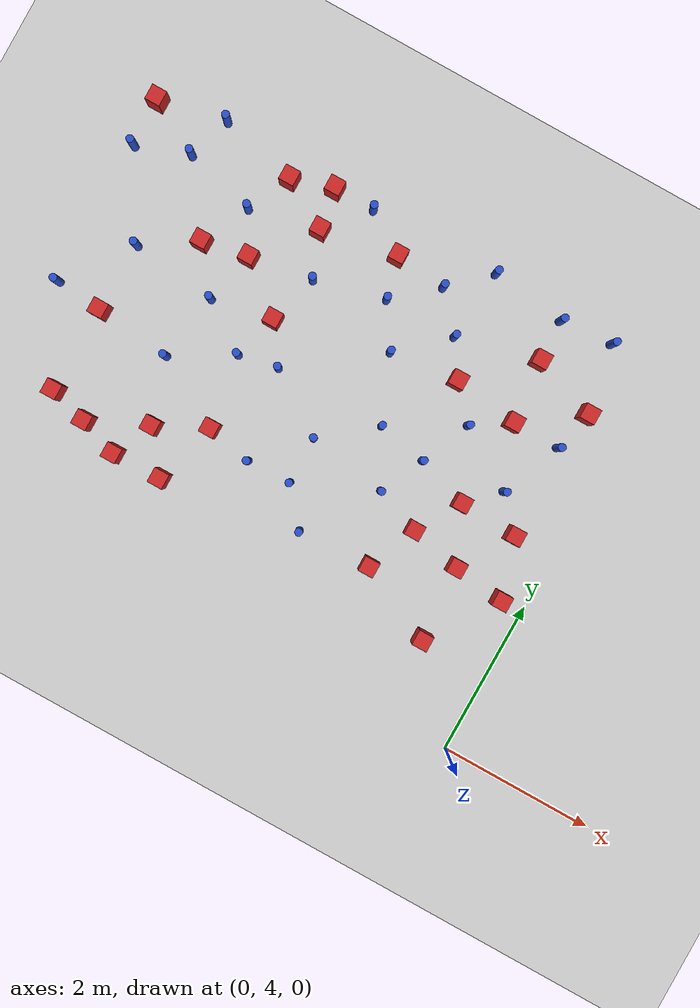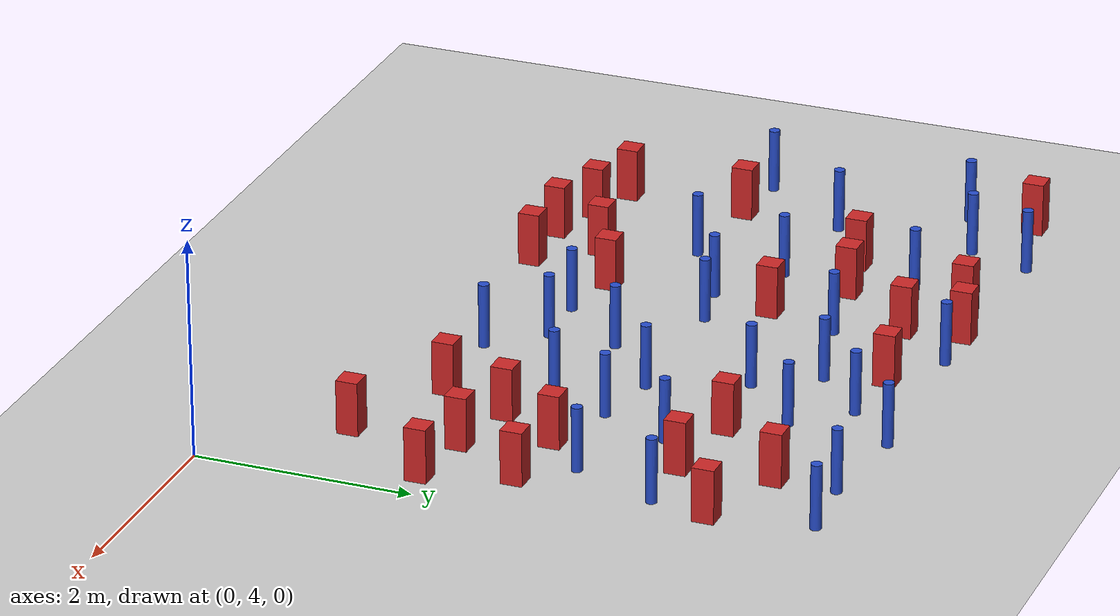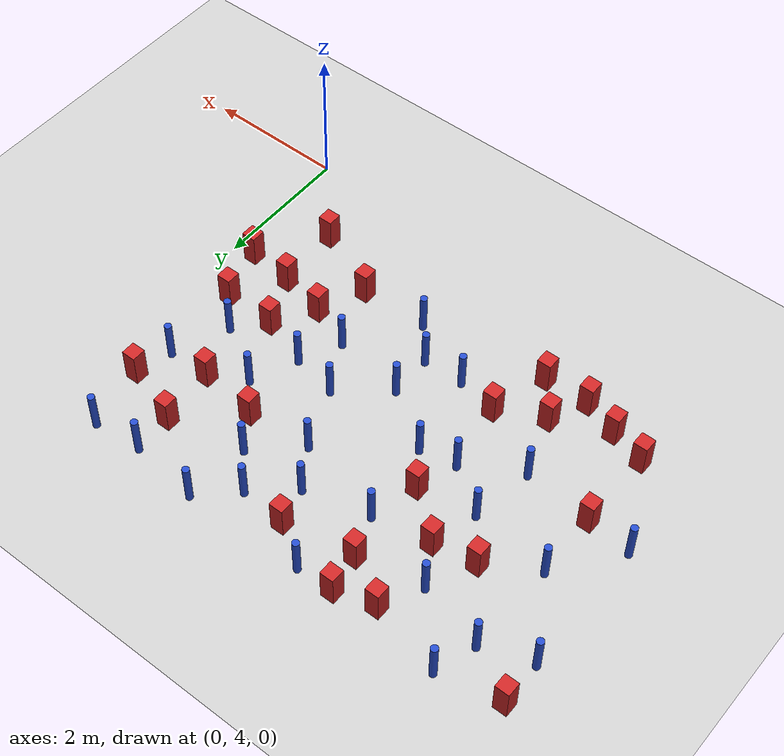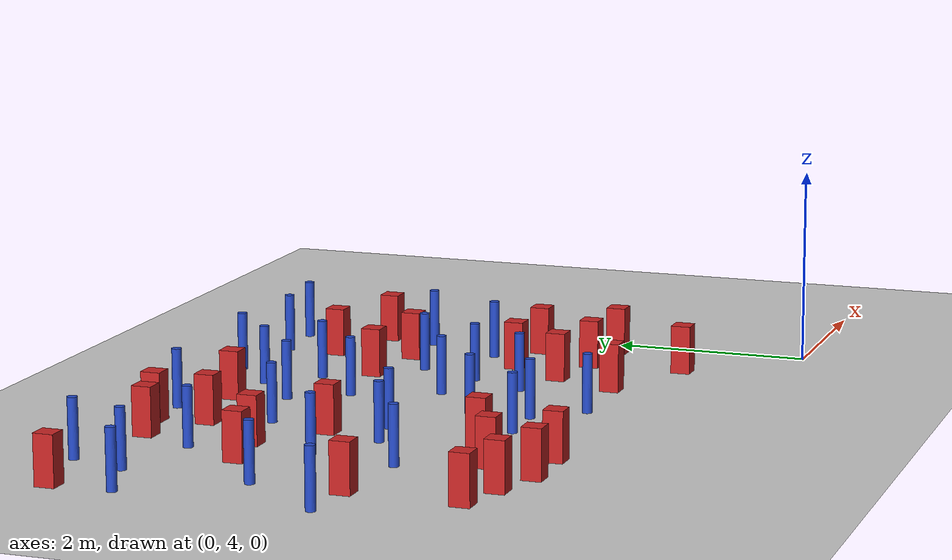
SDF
<sdf version="1.6">
 <world name="default">
  <model name="ground_plane">
   <static>1</static>
   <link name="link">
    <collision name="collision">
     <geometry><plane><normal>0 0 1</normal><size>100 100</size></plane></geometry>
     <surface><friction><ode><mu>100</mu><mu2>50</mu2></ode></friction></surface>
    </collision>
    <visual name="visual">
     <cast_shadows>0</cast_shadows>
     <geometry><plane><normal>0 0 1</normal><size>100 100</size></plane></geometry>
     <material>
      <ambient>1.0 1.0 1.0 1.0</ambient>
      <diffuse>0.8 0.8 0.8 1.0</diffuse>
      <specular>0.01 0.01 0.01 1.000000</specular>
     </material>
    </visual>
   </link>
  </model>
  <model name="pole_obstacle4">
   <static>true</static>
   <pose>-0.930717759357 7.12484259707 7.38925637345e-09 -8.471706928e-08 1.24976765086e-08 -1.74513093015e-07</pose>
   <link name="link">
    <pose>0 0 0.3 0 -0 0</pose>
    <inertial>
     <mass>1</mass>
     <inertia><ixx>0.145833</ixx><ixy>0</ixy><ixz>0</ixz><iyy>0.145833</iyy><iyz>0</iyz><izz>0.125</izz></inertia>
    </inertial>
    <collision name="collision">
     <geometry><cylinder><radius>0.05</radius><length>.6</length></cylinder></geometry>
    </collision>
    <visual name="visual">
     <geometry><cylinder><radius>0.05</radius><length>.6</length></cylinder></geometry>
     <material>
      <script><name>Gazebo/Blue</name><uri>file://media/materials/scripts/gazebo.material</uri></script>
     </material>
    </visual>
   </link>
  </model>
  <model name="square_post_obstacle12">
   <static>true</static>
   <pose>-4.55918763524 9.36100081865 1.91545236811e-07 -7.35059704564e-06 1.12565212e-07 2.39332434364e-05</pose>
   <link name="link">
    <pose>0 0 0.25 0 -0 0</pose>
    <inertial>
     <mass>100</mass>
     <inertia>
      <ixx>0.166667</ixx>
      <ixy>0</ixy>
      <ixz>0</ixz>
      <iyy>0.166667</iyy>
      <iyz>0</iyz>
      <izz>0.166667</izz>
     </inertia>
    </inertial>
    <collision name="collision"><geometry><box><size>.2 .2 .5</size></box></geometry></collision>
    <visual name="visual">
     <geometry><box><size>.2 .2 .5</size></box></geometry>
     <material>
      <script><name>Gazebo/Red</name><uri>file://media/materials/scripts/gazebo.material</uri></script>
     </material>
    </visual>
   </link>
  </model>
  <model name="pole_obstacle28">
   <static>true</static>
   <pose>-1.71406051305 7.61934834004 7.38925637345e-09 -8.47170692799e-08 1.24976765033e-08 -1.74513093018e-07</pose>
   <link name="link">
    <pose>0 0 0.3 0 -0 0</pose>
    <inertial>
     <mass>1</mass>
     <inertia><ixx>0.145833</ixx><ixy>0</ixy><ixz>0</ixz><iyy>0.145833</iyy><iyz>0</iyz><izz>0.125</izz></inertia>
    </inertial>
    <collision name="collision">
     <geometry><cylinder><radius>0.05</radius><length>.6</length></cylinder></geometry>
    </collision>
    <visual name="visual">
     <geometry><cylinder><radius>0.05</radius><length>.6</length></cylinder></geometry>
     <material>
      <script><name>Gazebo/Blue</name><uri>file://media/materials/scripts/gazebo.material</uri></script>
     </material>
    </visual>
   </link>
  </model>
  <model name="pole_obstacle32">
   <static>true</static>
   <pose>-6.35082785405 7.57170892013 7.38925637345e-09 -8.47170692796e-08 1.24976764786e-08 -1.74513093032e-07</pose>
   <link name="link">
    <pose>0 0 0.3 0 -0 0</pose>
    <inertial>
     <mass>1</mass>
     <inertia><ixx>0.145833</ixx><ixy>0</ixy><ixz>0</ixz><iyy>0.145833</iyy><iyz>0</iyz><izz>0.125</izz></inertia>
    </inertial>
    <collision name="collision">
     <geometry><cylinder><radius>0.05</radius><length>.6</length></cylinder></geometry>
    </collision>
    <visual name="visual">
     <geometry><cylinder><radius>0.05</radius><length>.6</length></cylinder></geometry>
     <material>
      <script><name>Gazebo/Blue</name><uri>file://media/materials/scripts/gazebo.material</uri></script>
     </material>
    </visual>
   </link>
  </model>
  <model name="pole_obstacle34">
   <static>true</static>
   <pose>-5.37613314952 8.6303343026 7.38925637345e-09 -8.471706928e-08 1.24976765081e-08 -1.74513093015e-07</pose>
   <link name="link">
    <pose>0 0 0.3 0 -0 0</pose>
    <inertial>
     <mass>1</mass>
     <inertia><ixx>0.145833</ixx><ixy>0</ixy><ixz>0</ixz><iyy>0.145833</iyy><iyz>0</iyz><izz>0.125</izz></inertia>
    </inertial>
    <collision name="collision">
     <geometry><cylinder><radius>0.05</radius><length>.6</length></cylinder></geometry>
    </collision>
    <visual name="visual">
     <geometry><cylinder><radius>0.05</radius><length>.6</length></cylinder></geometry>
     <material>
      <script><name>Gazebo/Blue</name><uri>file://media/materials/scripts/gazebo.material</uri></script>
     </material>
    </visual>
   </link>
  </model>
  <model name="pole_obstacle36">
   <static>true</static>
   <pose>-6.97989239073 6.7150000627 7.38925637345e-09 -8.47170692796e-08 1.24976764786e-08 -1.74513093032e-07</pose>
   <link name="link">
    <pose>0 0 0.3 0 -0 0</pose>
    <inertial>
     <mass>1</mass>
     <inertia><ixx>0.145833</ixx><ixy>0</ixy><ixz>0</ixz><iyy>0.145833</iyy><iyz>0</iyz><izz>0.125</izz></inertia>
    </inertial>
    <collision name="collision">
     <geometry><cylinder><radius>0.05</radius><length>.6</length></cylinder></geometry>
    </collision>
    <visual name="visual">
     <geometry><cylinder><radius>0.05</radius><length>.6</length></cylinder></geometry>
     <material>
      <script><name>Gazebo/Blue</name><uri>file://media/materials/scripts/gazebo.material</uri></script>
     </material>
    </visual>
   </link>
  </model>
  <model name="pole_obstacle40">
   <static>true</static>
   <pose>-1.99238676467 6.96823356123 7.38925637345e-09 -8.47170692799e-08 1.2497676507e-08 -1.74513093016e-07</pose>
   <link name="link">
    <pose>0 0 0.3 0 -0 0</pose>
    <inertial>
     <mass>1</mass>
     <inertia><ixx>0.145833</ixx><ixy>0</ixy><ixz>0</ixz><iyy>0.145833</iyy><iyz>0</iyz><izz>0.125</izz></inertia>
    </inertial>
    <collision name="collision">
     <geometry><cylinder><radius>0.05</radius><length>.6</length></cylinder></geometry>
    </collision>
    <visual name="visual">
     <geometry><cylinder><radius>0.05</radius><length>.6</length></cylinder></geometry>
     <material>
      <script><name>Gazebo/Blue</name><uri>file://media/materials/scripts/gazebo.material</uri></script>
     </material>
    </visual>
   </link>
  </model>
  <model name="pole_obstacle42">
   <static>true</static>
   <pose>-1.34647374976 9.29930138233 7.38925637345e-09 -8.47170692798e-08 1.24976764881e-08 -1.74513093027e-07</pose>
   <link name="link">
    <pose>0 0 0.3 0 -0 0</pose>
    <inertial>
     <mass>1</mass>
     <inertia><ixx>0.145833</ixx><ixy>0</ixy><ixz>0</ixz><iyy>0.145833</iyy><iyz>0</iyz><izz>0.125</izz></inertia>
    </inertial>
    <collision name="collision">
     <geometry><cylinder><radius>0.05</radius><length>.6</length></cylinder></geometry>
    </collision>
    <visual name="visual">
     <geometry><cylinder><radius>0.05</radius><length>.6</length></cylinder></geometry>
     <material>
      <script><name>Gazebo/Blue</name><uri>file://media/materials/scripts/gazebo.material</uri></script>
     </material>
    </visual>
   </link>
  </model>
  <model name="pole_obstacle43">
   <static>true</static>
   <pose>-4.60972845039 7.00054521058 7.38925637345e-09 -8.47170692796e-08 1.24976764786e-08 -1.74513093032e-07</pose>
   <link name="link">
    <pose>0 0 0.3 0 -0 0</pose>
    <inertial>
     <mass>1</mass>
     <inertia><ixx>0.145833</ixx><ixy>0</ixy><ixz>0</ixz><iyy>0.145833</iyy><iyz>0</iyz><izz>0.125</izz></inertia>
    </inertial>
    <collision name="collision">
     <geometry><cylinder><radius>0.05</radius><length>.6</length></cylinder></geometry>
    </collision>
    <visual name="visual">
     <geometry><cylinder><radius>0.05</radius><length>.6</length></cylinder></geometry>
     <material>
      <script><name>Gazebo/Blue</name><uri>file://media/materials/scripts/gazebo.material</uri></script>
     </material>
    </visual>
   </link>
  </model>
  <model name="pole_obstacle45">
   <static>true</static>
   <pose>-0.658210196071 9.35668342999 7.38925637345e-09 -8.47170692797e-08 1.249767648e-08 -1.74513093032e-07</pose>
   <link name="link">
    <pose>0 0 0.3 0 -0 0</pose>
    <inertial>
     <mass>1</mass>
     <inertia><ixx>0.145833</ixx><ixy>0</ixy><ixz>0</ixz><iyy>0.145833</iyy><iyz>0</iyz><izz>0.125</izz></inertia>
    </inertial>
    <collision name="collision">
     <geometry><cylinder><radius>0.05</radius><length>.6</length></cylinder></geometry>
    </collision>
    <visual name="visual">
     <geometry><cylinder><radius>0.05</radius><length>.6</length></cylinder></geometry>
     <material>
      <script><name>Gazebo/Blue</name><uri>file://media/materials/scripts/gazebo.material</uri></script>
     </material>
    </visual>
   </link>
  </model>
  <model name="square_post_obstacle37">
   <static>true</static>
   <pose>-6.36200642995 5.52686472574 1.91545236811e-07 -7.35059704564e-06 1.12565212e-07 2.39332434364e-05</pose>
   <link name="link">
    <pose>0 0 0.25 0 -0 0</pose>
    <inertial>
     <mass>100</mass>
     <inertia>
      <ixx>0.166667</ixx>
      <ixy>0</ixy>
      <ixz>0</ixz>
      <iyy>0.166667</iyy>
      <iyz>0</iyz>
      <izz>0.166667</izz>
     </inertia>
    </inertial>
    <collision name="collision"><geometry><box><size>.2 .2 .5</size></box></geometry></collision>
    <visual name="visual">
     <geometry><box><size>.2 .2 .5</size></box></geometry>
     <material>
      <script><name>Gazebo/Red</name><uri>file://media/materials/scripts/gazebo.material</uri></script>
     </material>
    </visual>
   </link>
  </model>
  <model name="square_post_obstacle38">
   <static>true</static>
   <pose>-4.45908990108 6.04963042775 1.91545236811e-07 -7.35059704564e-06 1.12565212e-07 2.39332434364e-05</pose>
   <link name="link">
    <pose>0 0 0.25 0 -0 0</pose>
    <inertial>
     <mass>100</mass>
     <inertia>
      <ixx>0.166667</ixx>
      <ixy>0</ixy>
      <ixz>0</ixz>
      <iyy>0.166667</iyy>
      <iyz>0</iyz>
      <izz>0.166667</izz>
     </inertia>
    </inertial>
    <collision name="collision"><geometry><box><size>.2 .2 .5</size></box></geometry></collision>
    <visual name="visual">
     <geometry><box><size>.2 .2 .5</size></box></geometry>
     <material>
      <script><name>Gazebo/Red</name><uri>file://media/materials/scripts/gazebo.material</uri></script>
     </material>
    </visual>
   </link>
  </model>
  <model name="pole_obstacle51">
   <static>true</static>
   <pose>-3.29571415643 6.55785042648 7.38925637345e-09 -8.47170692798e-08 1.24976765033e-08 -1.74513093019e-07</pose>
   <link name="link">
    <pose>0 0 0.3 0 -0 0</pose>
    <inertial>
     <mass>1</mass>
     <inertia><ixx>0.145833</ixx><ixy>0</ixy><ixz>0</ixz><iyy>0.145833</iyy><iyz>0</iyz><izz>0.125</izz></inertia>
    </inertial>
    <collision name="collision">
     <geometry><cylinder><radius>0.05</radius><length>.6</length></cylinder></geometry>
    </collision>
    <visual name="visual">
     <geometry><cylinder><radius>0.05</radius><length>.6</length></cylinder></geometry>
     <material>
      <script><name>Gazebo/Blue</name><uri>file://media/materials/scripts/gazebo.material</uri></script>
     </material>
    </visual>
   </link>
  </model>
  <model name="square_post_obstacle44">
   <static>true</static>
   <pose>-1.93911161872 5.51848959936 1.91545236811e-07 -7.35059704564e-06 1.12565212e-07 2.39332434364e-05</pose>
   <link name="link">
    <pose>0 0 0.25 0 -0 0</pose>
    <inertial>
     <mass>100</mass>
     <inertia>
      <ixx>0.166667</ixx>
      <ixy>0</ixy>
      <ixz>0</ixz>
      <iyy>0.166667</iyy>
      <iyz>0</iyz>
      <izz>0.166667</izz>
     </inertia>
    </inertial>
    <collision name="collision"><geometry><box><size>.2 .2 .5</size></box></geometry></collision>
    <visual name="visual">
     <geometry><box><size>.2 .2 .5</size></box></geometry>
     <material>
      <script><name>Gazebo/Red</name><uri>file://media/materials/scripts/gazebo.material</uri></script>
     </material>
    </visual>
   </link>
  </model>
  <model name="square_post_obstacle45">
   <static>true</static>
   <pose>-1.32112253004 6.74896121471 1.91545236811e-07 -7.35059704564e-06 1.12565212e-07 2.39332434364e-05</pose>
   <link name="link">
    <pose>0 0 0.25 0 -0 0</pose>
    <inertial>
     <mass>100</mass>
     <inertia>
      <ixx>0.166667</ixx>
      <ixy>0</ixy>
      <ixz>0</ixz>
      <iyy>0.166667</iyy>
      <iyz>0</iyz>
      <izz>0.166667</izz>
     </inertia>
    </inertial>
    <collision name="collision"><geometry><box><size>.2 .2 .5</size></box></geometry></collision>
    <visual name="visual">
     <geometry><box><size>.2 .2 .5</size></box></geometry>
     <material>
      <script><name>Gazebo/Red</name><uri>file://media/materials/scripts/gazebo.material</uri></script>
     </material>
    </visual>
   </link>
  </model>
  <model name="pole_obstacle61">
   <static>true</static>
   <pose>-2.8109379663 8.95694958521 7.38925637345e-09 -8.47170692793e-08 1.24976764408e-08 -1.74513093041e-07</pose>
   <link name="link">
    <pose>0 0 0.3 0 -0 0</pose>
    <inertial>
     <mass>1</mass>
     <inertia><ixx>0.145833</ixx><ixy>0</ixy><ixz>0</ixz><iyy>0.145833</iyy><iyz>0</iyz><izz>0.125</izz></inertia>
    </inertial>
    <collision name="collision">
     <geometry><cylinder><radius>0.05</radius><length>.6</length></cylinder></geometry>
    </collision>
    <visual name="visual">
     <geometry><cylinder><radius>0.05</radius><length>.6</length></cylinder></geometry>
     <material>
      <script><name>Gazebo/Blue</name><uri>file://media/materials/scripts/gazebo.material</uri></script>
     </material>
    </visual>
   </link>
  </model>
  <model name="pole_obstacle62">
   <static>true</static>
   <pose>-3.28658914548 5.93734690751 7.38925637345e-09 -8.47170692794e-08 1.24976764468e-08 -1.7451309304e-07</pose>
   <link name="link">
    <pose>0 0 0.3 0 -0 0</pose>
    <inertial>
     <mass>1</mass>
     <inertia><ixx>0.145833</ixx><ixy>0</ixy><ixz>0</ixz><iyy>0.145833</iyy><iyz>0</iyz><izz>0.125</izz></inertia>
    </inertial>
    <collision name="collision">
     <geometry><cylinder><radius>0.05</radius><length>.6</length></cylinder></geometry>
    </collision>
    <visual name="visual">
     <geometry><cylinder><radius>0.05</radius><length>.6</length></cylinder></geometry>
     <material>
      <script><name>Gazebo/Blue</name><uri>file://media/materials/scripts/gazebo.material</uri></script>
     </material>
    </visual>
   </link>
  </model>
  <model name="pole_obstacle66">
   <static>true</static>
   <pose>-5.37779951973 6.55581427016 7.38925637345e-09 -8.47170692796e-08 1.24976764786e-08 -1.74513093032e-07</pose>
   <link name="link">
    <pose>0 0 0.3 0 -0 0</pose>
    <inertial>
     <mass>1</mass>
     <inertia><ixx>0.145833</ixx><ixy>0</ixy><ixz>0</ixz><iyy>0.145833</iyy><iyz>0</iyz><izz>0.125</izz></inertia>
    </inertial>
    <collision name="collision">
     <geometry><cylinder><radius>0.05</radius><length>.6</length></cylinder></geometry>
    </collision>
    <visual name="visual">
     <geometry><cylinder><radius>0.05</radius><length>.6</length></cylinder></geometry>
     <material>
      <script><name>Gazebo/Blue</name><uri>file://media/materials/scripts/gazebo.material</uri></script>
     </material>
    </visual>
   </link>
  </model>
  <model name="square_post_obstacle53">
   <static>true</static>
   <pose>-1.66848269606 6.17764640314 1.91545236811e-07 -7.35059704564e-06 1.12565212e-07 2.39332434364e-05</pose>
   <link name="link">
    <pose>0 0 0.25 0 -0 0</pose>
    <inertial>
     <mass>100</mass>
     <inertia>
      <ixx>0.166667</ixx>
      <ixy>0</ixy>
      <ixz>0</ixz>
      <iyy>0.166667</iyy>
      <iyz>0</iyz>
      <izz>0.166667</izz>
     </inertia>
    </inertial>
    <collision name="collision"><geometry><box><size>.2 .2 .5</size></box></geometry></collision>
    <visual name="visual">
     <geometry><box><size>.2 .2 .5</size></box></geometry>
     <material>
      <script><name>Gazebo/Red</name><uri>file://media/materials/scripts/gazebo.material</uri></script>
     </material>
    </visual>
   </link>
  </model>
  <model name="pole_obstacle73">
   <static>true</static>
   <pose>-3.86832075959 5.92066692139 7.38925637345e-09 -8.47170692798e-08 1.24976765033e-08 -1.74513093019e-07</pose>
   <link name="link">
    <pose>0 0 0.3 0 -0 0</pose>
    <inertial>
     <mass>1</mass>
     <inertia><ixx>0.145833</ixx><ixy>0</ixy><ixz>0</ixz><iyy>0.145833</iyy><iyz>0</iyz><izz>0.125</izz></inertia>
    </inertial>
    <collision name="collision">
     <geometry><cylinder><radius>0.05</radius><length>.6</length></cylinder></geometry>
    </collision>
    <visual name="visual">
     <geometry><cylinder><radius>0.05</radius><length>.6</length></cylinder></geometry>
     <material>
      <script><name>Gazebo/Blue</name><uri>file://media/materials/scripts/gazebo.material</uri></script>
     </material>
    </visual>
   </link>
  </model>
  <model name="pole_obstacle86">
   <static>true</static>
   <pose>-2.63784023454 7.09611200315 7.38925637345e-09 -8.47170692798e-08 1.24976765033e-08 -1.74513093019e-07</pose>
   <link name="link">
    <pose>0 0 0.3 0 -0 0</pose>
    <inertial>
     <mass>1</mass>
     <inertia><ixx>0.145833</ixx><ixy>0</ixy><ixz>0</ixz><iyy>0.145833</iyy><iyz>0</iyz><izz>0.125</izz></inertia>
    </inertial>
    <collision name="collision">
     <geometry><cylinder><radius>0.05</radius><length>.6</length></cylinder></geometry>
    </collision>
    <visual name="visual">
     <geometry><cylinder><radius>0.05</radius><length>.6</length></cylinder></geometry>
     <material>
      <script><name>Gazebo/Blue</name><uri>file://media/materials/scripts/gazebo.material</uri></script>
     </material>
    </visual>
   </link>
  </model>
  <model name="square_post_obstacle74">
   <static>true</static>
   <pose>-6.34874334161 6.65929220049 1.91545236811e-07 -7.35059704564e-06 1.12565212e-07 2.39332434364e-05</pose>
   <link name="link">
    <pose>0 0 0.25 0 -0 0</pose>
    <inertial>
     <mass>100</mass>
     <inertia>
      <ixx>0.166667</ixx>
      <ixy>0</ixy>
      <ixz>0</ixz>
      <iyy>0.166667</iyy>
      <iyz>0</iyz>
      <izz>0.166667</izz>
     </inertia>
    </inertial>
    <collision name="collision"><geometry><box><size>.2 .2 .5</size></box></geometry></collision>
    <visual name="visual">
     <geometry><box><size>.2 .2 .5</size></box></geometry>
     <material>
      <script><name>Gazebo/Red</name><uri>file://media/materials/scripts/gazebo.material</uri></script>
     </material>
    </visual>
   </link>
  </model>
  <model name="square_post_obstacle80">
   <static>true</static>
   <pose>-4.44009663885 7.59226835453 1.91545236811e-07 -7.35059704564e-06 1.12565212e-07 2.39332434364e-05</pose>
   <link name="link">
    <pose>0 0 0.25 0 -0 0</pose>
    <inertial>
     <mass>100</mass>
     <inertia>
      <ixx>0.166667</ixx>
      <ixy>0</ixy>
      <ixz>0</ixz>
      <iyy>0.166667</iyy>
      <iyz>0</iyz>
      <izz>0.166667</izz>
     </inertia>
    </inertial>
    <collision name="collision"><geometry><box><size>.2 .2 .5</size></box></geometry></collision>
    <visual name="visual">
     <geometry><box><size>.2 .2 .5</size></box></geometry>
     <material>
      <script><name>Gazebo/Red</name><uri>file://media/materials/scripts/gazebo.material</uri></script>
     </material>
    </visual>
   </link>
  </model>
  <model name="pole_obstacle93">
   <static>true</static>
   <pose>-2.98899749594 7.94003792049 7.38925637345e-09 -8.47170692798e-08 1.24976765033e-08 -1.74513093019e-07</pose>
   <link name="link">
    <pose>0 0 0.3 0 -0 0</pose>
    <inertial>
     <mass>1</mass>
     <inertia><ixx>0.145833</ixx><ixy>0</ixy><ixz>0</ixz><iyy>0.145833</iyy><iyz>0</iyz><izz>0.125</izz></inertia>
    </inertial>
    <collision name="collision">
     <geometry><cylinder><radius>0.05</radius><length>.6</length></cylinder></geometry>
    </collision>
    <visual name="visual">
     <geometry><cylinder><radius>0.05</radius><length>.6</length></cylinder></geometry>
     <material>
      <script><name>Gazebo/Blue</name><uri>file://media/materials/scripts/gazebo.material</uri></script>
     </material>
    </visual>
   </link>
  </model>
  <model name="square_post_obstacle87">
   <static>true</static>
   <pose>-2.09605803203 8.03868098369 1.91545236811e-07 -7.35059704564e-06 1.12565212e-07 2.39332434364e-05</pose>
   <link name="link">
    <pose>0 0 0.25 0 -0 0</pose>
    <inertial>
     <mass>100</mass>
     <inertia>
      <ixx>0.166667</ixx>
      <ixy>0</ixy>
      <ixz>0</ixz>
      <iyy>0.166667</iyy>
      <iyz>0</iyz>
      <izz>0.166667</izz>
     </inertia>
    </inertial>
    <collision name="collision"><geometry><box><size>.2 .2 .5</size></box></geometry></collision>
    <visual name="visual">
     <geometry><box><size>.2 .2 .5</size></box></geometry>
     <material>
      <script><name>Gazebo/Red</name><uri>file://media/materials/scripts/gazebo.material</uri></script>
     </material>
    </visual>
   </link>
  </model>
  <model name="square_post_obstacle101">
   <static>true</static>
   <pose>-6.98807163195 9.25258063277 1.91545236811e-07 -7.35059704564e-06 1.12565212e-07 2.39332434364e-05</pose>
   <link name="link">
    <pose>0 0 0.25 0 -0 0</pose>
    <inertial>
     <mass>100</mass>
     <inertia>
      <ixx>0.166667</ixx>
      <ixy>0</ixy>
      <ixz>0</ixz>
      <iyy>0.166667</iyy>
      <iyz>0</iyz>
      <izz>0.166667</izz>
     </inertia>
    </inertial>
    <collision name="collision"><geometry><box><size>.2 .2 .5</size></box></geometry></collision>
    <visual name="visual">
     <geometry><box><size>.2 .2 .5</size></box></geometry>
     <material>
      <script><name>Gazebo/Red</name><uri>file://media/materials/scripts/gazebo.material</uri></script>
     </material>
    </visual>
   </link>
  </model>
  <model name="square_post_obstacle106">
   <static>true</static>
   <pose>-4.69953275738 5.212243168 1.91545236811e-07 -7.35059704564e-06 1.12565212e-07 2.39332434364e-05</pose>
   <link name="link">
    <pose>0 0 0.25 0 -0 0</pose>
    <inertial>
     <mass>100</mass>
     <inertia>
      <ixx>0.166667</ixx>
      <ixy>0</ixy>
      <ixz>0</ixz>
      <iyy>0.166667</iyy>
      <iyz>0</iyz>
      <izz>0.166667</izz>
     </inertia>
    </inertial>
    <collision name="collision"><geometry><box><size>.2 .2 .5</size></box></geometry></collision>
    <visual name="visual">
     <geometry><box><size>.2 .2 .5</size></box></geometry>
     <material>
      <script><name>Gazebo/Red</name><uri>file://media/materials/scripts/gazebo.material</uri></script>
     </material>
    </visual>
   </link>
  </model>
  <model name="square_post_obstacle110">
   <static>true</static>
   <pose>-5.0734626485 8.11465592109 1.91545236811e-07 -7.35059704564e-06 1.12565212e-07 2.39332434364e-05</pose>
   <link name="link">
    <pose>0 0 0.25 0 -0 0</pose>
    <inertial>
     <mass>100</mass>
     <inertia>
      <ixx>0.166667</ixx>
      <ixy>0</ixy>
      <ixz>0</ixz>
      <iyy>0.166667</iyy>
      <iyz>0</iyz>
      <izz>0.166667</izz>
     </inertia>
    </inertial>
    <collision name="collision"><geometry><box><size>.2 .2 .5</size></box></geometry></collision>
    <visual name="visual">
     <geometry><box><size>.2 .2 .5</size></box></geometry>
     <material>
      <script><name>Gazebo/Red</name><uri>file://media/materials/scripts/gazebo.material</uri></script>
     </material>
    </visual>
   </link>
  </model>
  <model name="pole_obstacle113">
   <static>true</static>
   <pose>-4.25526104985 8.25393531505 7.38925637345e-09 -8.471706928e-08 1.24976765081e-08 -1.74513093015e-07</pose>
   <link name="link">
    <pose>0 0 0.3 0 -0 0</pose>
    <inertial>
     <mass>1</mass>
     <inertia><ixx>0.145833</ixx><ixy>0</ixy><ixz>0</ixz><iyy>0.145833</iyy><iyz>0</iyz><izz>0.125</izz></inertia>
    </inertial>
    <collision name="collision">
     <geometry><cylinder><radius>0.05</radius><length>.6</length></cylinder></geometry>
    </collision>
    <visual name="visual">
     <geometry><cylinder><radius>0.05</radius><length>.6</length></cylinder></geometry>
     <material>
      <script><name>Gazebo/Blue</name><uri>file://media/materials/scripts/gazebo.material</uri></script>
     </material>
    </visual>
   </link>
  </model>
  <model name="pole_obstacle115">
   <static>true</static>
   <pose>-2.25819075225 6.39402592839 7.38925637345e-09 -8.47170692798e-08 1.24976765033e-08 -1.74513093019e-07</pose>
   <link name="link">
    <pose>0 0 0.3 0 -0 0</pose>
    <inertial>
     <mass>1</mass>
     <inertia><ixx>0.145833</ixx><ixy>0</ixy><ixz>0</ixz><iyy>0.145833</iyy><iyz>0</iyz><izz>0.125</izz></inertia>
    </inertial>
    <collision name="collision">
     <geometry><cylinder><radius>0.05</radius><length>.6</length></cylinder></geometry>
    </collision>
    <visual name="visual">
     <geometry><cylinder><radius>0.05</radius><length>.6</length></cylinder></geometry>
     <material>
      <script><name>Gazebo/Blue</name><uri>file://media/materials/scripts/gazebo.material</uri></script>
     </material>
    </visual>
   </link>
  </model>
  <model name="pole_obstacle123">
   <static>true</static>
   <pose>-3.34349314362 8.4860822654 7.38925637345e-09 -8.47170692793e-08 1.24976764408e-08 -1.74513093041e-07</pose>
   <link name="link">
    <pose>0 0 0.3 0 -0 0</pose>
    <inertial>
     <mass>1</mass>
     <inertia><ixx>0.145833</ixx><ixy>0</ixy><ixz>0</ixz><iyy>0.145833</iyy><iyz>0</iyz><izz>0.125</izz></inertia>
    </inertial>
    <collision name="collision">
     <geometry><cylinder><radius>0.05</radius><length>.6</length></cylinder></geometry>
    </collision>
    <visual name="visual">
     <geometry><cylinder><radius>0.05</radius><length>.6</length></cylinder></geometry>
     <material>
      <script><name>Gazebo/Blue</name><uri>file://media/materials/scripts/gazebo.material</uri></script>
     </material>
    </visual>
   </link>
  </model>
  <model name="pole_obstacle128">
   <static>true</static>
   <pose>-0.614464752404 7.9179683822 7.38925637345e-09 -8.471706928e-08 1.24976765086e-08 -1.74513093015e-07</pose>
   <link name="link">
    <pose>0 0 0.3 0 -0 0</pose>
    <inertial>
     <mass>1</mass>
     <inertia><ixx>0.145833</ixx><ixy>0</ixy><ixz>0</ixz><iyy>0.145833</iyy><iyz>0</iyz><izz>0.125</izz></inertia>
    </inertial>
    <collision name="collision">
     <geometry><cylinder><radius>0.05</radius><length>.6</length></cylinder></geometry>
    </collision>
    <visual name="visual">
     <geometry><cylinder><radius>0.05</radius><length>.6</length></cylinder></geometry>
     <material>
      <script><name>Gazebo/Blue</name><uri>file://media/materials/scripts/gazebo.material</uri></script>
     </material>
    </visual>
   </link>
  </model>
  <model name="square_post_obstacle126">
   <static>true</static>
   <pose>-1.24918217073 7.92057295151 1.91545236811e-07 -7.35059704564e-06 1.12565212e-07 2.39332434364e-05</pose>
   <link name="link">
    <pose>0 0 0.25 0 -0 0</pose>
    <inertial>
     <mass>100</mass>
     <inertia>
      <ixx>0.166667</ixx>
      <ixy>0</ixy>
      <ixz>0</ixz>
      <iyy>0.166667</iyy>
      <iyz>0</iyz>
      <izz>0.166667</izz>
     </inertia>
    </inertial>
    <collision name="collision"><geometry><box><size>.2 .2 .5</size></box></geometry></collision>
    <visual name="visual">
     <geometry><box><size>.2 .2 .5</size></box></geometry>
     <material>
      <script><name>Gazebo/Red</name><uri>file://media/materials/scripts/gazebo.material</uri></script>
     </material>
    </visual>
   </link>
  </model>
  <model name="square_post_obstacle127">
   <static>true</static>
   <pose>-3.48224338694 9.0155896093 1.91545236811e-07 -7.35059704564e-06 1.12565212e-07 2.39332434364e-05</pose>
   <link name="link">
    <pose>0 0 0.25 0 -0 0</pose>
    <inertial>
     <mass>100</mass>
     <inertia>
      <ixx>0.166667</ixx>
      <ixy>0</ixy>
      <ixz>0</ixz>
      <iyy>0.166667</iyy>
      <iyz>0</iyz>
      <izz>0.166667</izz>
     </inertia>
    </inertial>
    <collision name="collision"><geometry><box><size>.2 .2 .5</size></box></geometry></collision>
    <visual name="visual">
     <geometry><box><size>.2 .2 .5</size></box></geometry>
     <material>
      <script><name>Gazebo/Red</name><uri>file://media/materials/scripts/gazebo.material</uri></script>
     </material>
    </visual>
   </link>
  </model>
  <model name="square_post_obstacle128">
   <static>true</static>
   <pose>-0.499403940174 8.45003181532 1.91545236811e-07 -7.35059704564e-06 1.12565212e-07 2.39332434364e-05</pose>
   <link name="link">
    <pose>0 0 0.25 0 -0 0</pose>
    <inertial>
     <mass>100</mass>
     <inertia>
      <ixx>0.166667</ixx>
      <ixy>0</ixy>
      <ixz>0</ixz>
      <iyy>0.166667</iyy>
      <iyz>0</iyz>
      <izz>0.166667</izz>
     </inertia>
    </inertial>
    <collision name="collision"><geometry><box><size>.2 .2 .5</size></box></geometry></collision>
    <visual name="visual">
     <geometry><box><size>.2 .2 .5</size></box></geometry>
     <material>
      <script><name>Gazebo/Red</name><uri>file://media/materials/scripts/gazebo.material</uri></script>
     </material>
    </visual>
   </link>
  </model>
  <model name="pole_obstacle135">
   <static>true</static>
   <pose>-2.89344959535 5.47546348329 7.38925637345e-09 -8.47170692798e-08 1.24976765033e-08 -1.74513093019e-07</pose>
   <link name="link">
    <pose>0 0 0.3 0 -0 0</pose>
    <inertial>
     <mass>1</mass>
     <inertia><ixx>0.145833</ixx><ixy>0</ixy><ixz>0</ixz><iyy>0.145833</iyy><iyz>0</iyz><izz>0.125</izz></inertia>
    </inertial>
    <collision name="collision">
     <geometry><cylinder><radius>0.05</radius><length>.6</length></cylinder></geometry>
    </collision>
    <visual name="visual">
     <geometry><cylinder><radius>0.05</radius><length>.6</length></cylinder></geometry>
     <material>
      <script><name>Gazebo/Blue</name><uri>file://media/materials/scripts/gazebo.material</uri></script>
     </material>
    </visual>
   </link>
  </model>
  <model name="pole_obstacle138">
   <static>true</static>
   <pose>-4.02462668486 9.37132271419 7.38925637345e-09 -8.47170692799e-08 1.24976765075e-08 -1.74513093015e-07</pose>
   <link name="link">
    <pose>0 0 0.3 0 -0 0</pose>
    <inertial>
     <mass>1</mass>
     <inertia><ixx>0.145833</ixx><ixy>0</ixy><ixz>0</ixz><iyy>0.145833</iyy><iyz>0</iyz><izz>0.125</izz></inertia>
    </inertial>
    <collision name="collision">
     <geometry><cylinder><radius>0.05</radius><length>.6</length></cylinder></geometry>
    </collision>
    <visual name="visual">
     <geometry><cylinder><radius>0.05</radius><length>.6</length></cylinder></geometry>
     <material>
      <script><name>Gazebo/Blue</name><uri>file://media/materials/scripts/gazebo.material</uri></script>
     </material>
    </visual>
   </link>
  </model>
  <model name="square_post_obstacle135">
   <static>true</static>
   <pose>-0.321455723116 5.94029716367 1.91545236811e-07 -7.35059704564e-06 1.12565212e-07 2.39332434364e-05</pose>
   <link name="link">
    <pose>0 0 0.25 0 -0 0</pose>
    <inertial>
     <mass>100</mass>
     <inertia>
      <ixx>0.166667</ixx>
      <ixy>0</ixy>
      <ixz>0</ixz>
      <iyy>0.166667</iyy>
      <iyz>0</iyz>
      <izz>0.166667</izz>
     </inertia>
    </inertial>
    <collision name="collision"><geometry><box><size>.2 .2 .5</size></box></geometry></collision>
    <visual name="visual">
     <geometry><box><size>.2 .2 .5</size></box></geometry>
     <material>
      <script><name>Gazebo/Red</name><uri>file://media/materials/scripts/gazebo.material</uri></script>
     </material>
    </visual>
   </link>
  </model>
  <model name="square_post_obstacle137">
   <static>true</static>
   <pose>-5.34885966083 5.20436400281 1.91545236811e-07 -7.35059704564e-06 1.12565212e-07 2.39332434364e-05</pose>
   <link name="link">
    <pose>0 0 0.25 0 -0 0</pose>
    <inertial>
     <mass>100</mass>
     <inertia>
      <ixx>0.166667</ixx>
      <ixy>0</ixy>
      <ixz>0</ixz>
      <iyy>0.166667</iyy>
      <iyz>0</iyz>
      <izz>0.166667</izz>
     </inertia>
    </inertial>
    <collision name="collision"><geometry><box><size>.2 .2 .5</size></box></geometry></collision>
    <visual name="visual">
     <geometry><box><size>.2 .2 .5</size></box></geometry>
     <material>
      <script><name>Gazebo/Red</name><uri>file://media/materials/scripts/gazebo.material</uri></script>
     </material>
    </visual>
   </link>
  </model>
  <model name="square_post_obstacle145">
   <static>true</static>
   <pose>-0.997436905087 6.02825262707 1.91545236811e-07 -7.35059704564e-06 1.12565212e-07 2.39332434364e-05</pose>
   <link name="link">
    <pose>0 0 0.25 0 -0 0</pose>
    <inertial>
     <mass>100</mass>
     <inertia>
      <ixx>0.166667</ixx>
      <ixy>0</ixy>
      <ixz>0</ixz>
      <iyy>0.166667</iyy>
      <iyz>0</iyz>
      <izz>0.166667</izz>
     </inertia>
    </inertial>
    <collision name="collision"><geometry><box><size>.2 .2 .5</size></box></geometry></collision>
    <visual name="visual">
     <geometry><box><size>.2 .2 .5</size></box></geometry>
     <material>
      <script><name>Gazebo/Red</name><uri>file://media/materials/scripts/gazebo.material</uri></script>
     </material>
    </visual>
   </link>
  </model>
  <model name="pole_obstacle160">
   <static>true</static>
   <pose>-6.30570279183 8.87048234924 7.38925637345e-09 -8.471706928e-08 1.24976765081e-08 -1.74513093015e-07</pose>
   <link name="link">
    <pose>0 0 0.3 0 -0 0</pose>
    <inertial>
     <mass>1</mass>
     <inertia><ixx>0.145833</ixx><ixy>0</ixy><ixz>0</ixz><iyy>0.145833</iyy><iyz>0</iyz><izz>0.125</izz></inertia>
    </inertial>
    <collision name="collision">
     <geometry><cylinder><radius>0.05</radius><length>.6</length></cylinder></geometry>
    </collision>
    <visual name="visual">
     <geometry><cylinder><radius>0.05</radius><length>.6</length></cylinder></geometry>
     <material>
      <script><name>Gazebo/Blue</name><uri>file://media/materials/scripts/gazebo.material</uri></script>
     </material>
    </visual>
   </link>
  </model>
  <model name="pole_obstacle161">
   <static>true</static>
   <pose>-6.12227298512 9.44668133696 7.38925637345e-09 -8.471706928e-08 1.24976765081e-08 -1.74513093015e-07</pose>
   <link name="link">
    <pose>0 0 0.3 0 -0 0</pose>
    <inertial>
     <mass>1</mass>
     <inertia><ixx>0.145833</ixx><ixy>0</ixy><ixz>0</ixz><iyy>0.145833</iyy><iyz>0</iyz><izz>0.125</izz></inertia>
    </inertial>
    <collision name="collision">
     <geometry><cylinder><radius>0.05</radius><length>.6</length></cylinder></geometry>
    </collision>
    <visual name="visual">
     <geometry><cylinder><radius>0.05</radius><length>.6</length></cylinder></geometry>
     <material>
      <script><name>Gazebo/Blue</name><uri>file://media/materials/scripts/gazebo.material</uri></script>
     </material>
    </visual>
   </link>
  </model>
  <model name="pole_obstacle165">
   <static>true</static>
   <pose>-2.32259415293 9.4187497557 7.38925637345e-09 -8.47170692793e-08 1.24976764408e-08 -1.74513093041e-07</pose>
   <link name="link">
    <pose>0 0 0.3 0 -0 0</pose>
    <inertial>
     <mass>1</mass>
     <inertia><ixx>0.145833</ixx><ixy>0</ixy><ixz>0</ixz><iyy>0.145833</iyy><iyz>0</iyz><izz>0.125</izz></inertia>
    </inertial>
    <collision name="collision">
     <geometry><cylinder><radius>0.05</radius><length>.6</length></cylinder></geometry>
    </collision>
    <visual name="visual">
     <geometry><cylinder><radius>0.05</radius><length>.6</length></cylinder></geometry>
     <material>
      <script><name>Gazebo/Blue</name><uri>file://media/materials/scripts/gazebo.material</uri></script>
     </material>
    </visual>
   </link>
  </model>
  <model name="square_post_obstacle160">
   <static>true</static>
   <pose>-0.932356972501 5.05378361667 1.91545236811e-07 -7.35059704564e-06 1.12565212e-07 2.39332434364e-05</pose>
   <link name="link">
    <pose>0 0 0.25 0 -0 0</pose>
    <inertial>
     <mass>100</mass>
     <inertia>
      <ixx>0.166667</ixx>
      <ixy>0</ixy>
      <ixz>0</ixz>
      <iyy>0.166667</iyy>
      <iyz>0</iyz>
      <izz>0.166667</izz>
     </inertia>
    </inertial>
    <collision name="collision"><geometry><box><size>.2 .2 .5</size></box></geometry></collision>
    <visual name="visual">
     <geometry><box><size>.2 .2 .5</size></box></geometry>
     <material>
      <script><name>Gazebo/Red</name><uri>file://media/materials/scripts/gazebo.material</uri></script>
     </material>
    </visual>
   </link>
  </model>
  <model name="square_post_obstacle161">
   <static>true</static>
   <pose>-5.10368163029 5.727671602 1.91545236811e-07 -7.35059704564e-06 1.12565212e-07 2.39332434364e-05</pose>
   <link name="link">
    <pose>0 0 0.25 0 -0 0</pose>
    <inertial>
     <mass>100</mass>
     <inertia>
      <ixx>0.166667</ixx>
      <ixy>0</ixy>
      <ixz>0</ixz>
      <iyy>0.166667</iyy>
      <iyz>0</iyz>
      <izz>0.166667</izz>
     </inertia>
    </inertial>
    <collision name="collision"><geometry><box><size>.2 .2 .5</size></box></geometry></collision>
    <visual name="visual">
     <geometry><box><size>.2 .2 .5</size></box></geometry>
     <material>
      <script><name>Gazebo/Red</name><uri>file://media/materials/scripts/gazebo.material</uri></script>
     </material>
    </visual>
   </link>
  </model>
  <model name="square_post_obstacle168">
   <static>true</static>
   <pose>-5.67084852318 8.00151469691 1.91545236811e-07 -7.35059704564e-06 1.12565212e-07 2.39332434364e-05</pose>
   <link name="link">
    <pose>0 0 0.25 0 -0 0</pose>
    <inertial>
     <mass>100</mass>
     <inertia>
      <ixx>0.166667</ixx>
      <ixy>0</ixy>
      <ixz>0</ixz>
      <iyy>0.166667</iyy>
      <iyz>0</iyz>
      <izz>0.166667</izz>
     </inertia>
    </inertial>
    <collision name="collision"><geometry><box><size>.2 .2 .5</size></box></geometry></collision>
    <visual name="visual">
     <geometry><box><size>.2 .2 .5</size></box></geometry>
     <material>
      <script><name>Gazebo/Red</name><uri>file://media/materials/scripts/gazebo.material</uri></script>
     </material>
    </visual>
   </link>
  </model>
  <model name="pole_obstacle180">
   <static>true</static>
   <pose>-4.09709379717 7.09977072305 7.38925637345e-09 -8.47170692796e-08 1.24976764786e-08 -1.74513093032e-07</pose>
   <link name="link">
    <pose>0 0 0.3 0 -0 0</pose>
    <inertial>
     <mass>1</mass>
     <inertia><ixx>0.145833</ixx><ixy>0</ixy><ixz>0</ixz><iyy>0.145833</iyy><iyz>0</iyz><izz>0.125</izz></inertia>
    </inertial>
    <collision name="collision">
     <geometry><cylinder><radius>0.05</radius><length>.6</length></cylinder></geometry>
    </collision>
    <visual name="visual">
     <geometry><cylinder><radius>0.05</radius><length>.6</length></cylinder></geometry>
     <material>
      <script><name>Gazebo/Blue</name><uri>file://media/materials/scripts/gazebo.material</uri></script>
     </material>
    </visual>
   </link>
  </model>
  <model name="square_post_obstacle183">
   <static>true</static>
   <pose>-1.3328166518 8.74718983887 1.91545236811e-07 -7.35059704564e-06 1.12565212e-07 2.39332434364e-05</pose>
   <link name="link">
    <pose>0 0 0.25 0 -0 0</pose>
    <inertial>
     <mass>100</mass>
     <inertia>
      <ixx>0.166667</ixx>
      <ixy>0</ixy>
      <ixz>0</ixz>
      <iyy>0.166667</iyy>
      <iyz>0</iyz>
      <izz>0.166667</izz>
     </inertia>
    </inertial>
    <collision name="collision"><geometry><box><size>.2 .2 .5</size></box></geometry></collision>
    <visual name="visual">
     <geometry><box><size>.2 .2 .5</size></box></geometry>
     <material>
      <script><name>Gazebo/Red</name><uri>file://media/materials/scripts/gazebo.material</uri></script>
     </material>
    </visual>
   </link>
  </model>
  <model name="square_post_obstacle194">
   <static>true</static>
   <pose>-5.1010307324 9.19768542493 1.91545236811e-07 -7.35059704564e-06 1.12565212e-07 2.39332434364e-05</pose>
   <link name="link">
    <pose>0 0 0.25 0 -0 0</pose>
    <inertial>
     <mass>100</mass>
     <inertia>
      <ixx>0.166667</ixx>
      <ixy>0</ixy>
      <ixz>0</ixz>
      <iyy>0.166667</iyy>
      <iyz>0</iyz>
      <izz>0.166667</izz>
     </inertia>
    </inertial>
    <collision name="collision"><geometry><box><size>.2 .2 .5</size></box></geometry></collision>
    <visual name="visual">
     <geometry><box><size>.2 .2 .5</size></box></geometry>
     <material>
      <script><name>Gazebo/Red</name><uri>file://media/materials/scripts/gazebo.material</uri></script>
     </material>
    </visual>
   </link>
  </model>
  <model name="square_post_obstacle197">
   <static>true</static>
   <pose>-4.47413675416 8.83308332683 1.91545236811e-07 -7.35059704564e-06 1.12565212e-07 2.39332434364e-05</pose>
   <link name="link">
    <pose>0 0 0.25 0 -0 0</pose>
    <inertial>
     <mass>100</mass>
     <inertia>
      <ixx>0.166667</ixx>
      <ixy>0</ixy>
      <ixz>0</ixz>
      <iyy>0.166667</iyy>
      <iyz>0</iyz>
      <izz>0.166667</izz>
     </inertia>
    </inertial>
    <collision name="collision"><geometry><box><size>.2 .2 .5</size></box></geometry></collision>
    <visual name="visual">
     <geometry><box><size>.2 .2 .5</size></box></geometry>
     <material>
      <script><name>Gazebo/Red</name><uri>file://media/materials/scripts/gazebo.material</uri></script>
     </material>
    </visual>
   </link>
  </model>
  <model name="square_post_obstacle201">
   <static>true</static>
   <pose>-5.85587408022 5.38026579311 1.91545236811e-07 -7.35059704564e-06 1.12565212e-07 2.39332434364e-05</pose>
   <link name="link">
    <pose>0 0 0.25 0 -0 0</pose>
    <inertial>
     <mass>100</mass>
     <inertia>
      <ixx>0.166667</ixx>
      <ixy>0</ixy>
      <ixz>0</ixz>
      <iyy>0.166667</iyy>
      <iyz>0</iyz>
      <izz>0.166667</izz>
     </inertia>
    </inertial>
    <collision name="collision"><geometry><box><size>.2 .2 .5</size></box></geometry></collision>
    <visual name="visual">
     <geometry><box><size>.2 .2 .5</size></box></geometry>
     <material>
      <script><name>Gazebo/Red</name><uri>file://media/materials/scripts/gazebo.material</uri></script>
     </material>
    </visual>
   </link>
  </model>
  <model name="square_post_obstacle205">
   <static>true</static>
   <pose>-0.56244595512 6.71251577209 1.91545236811e-07 -7.35059704564e-06 1.12565212e-07 2.39332434364e-05</pose>
   <link name="link">
    <pose>0 0 0.25 0 -0 0</pose>
    <inertial>
     <mass>100</mass>
     <inertia>
      <ixx>0.166667</ixx>
      <ixy>0</ixy>
      <ixz>0</ixz>
      <iyy>0.166667</iyy>
      <iyz>0</iyz>
      <izz>0.166667</izz>
     </inertia>
    </inertial>
    <collision name="collision"><geometry><box><size>.2 .2 .5</size></box></geometry></collision>
    <visual name="visual">
     <geometry><box><size>.2 .2 .5</size></box></geometry>
     <material>
      <script><name>Gazebo/Red</name><uri>file://media/materials/scripts/gazebo.material</uri></script>
     </material>
    </visual>
   </link>
  </model>
  <model name="pole_obstacle197">
   <static>true</static>
   <pose>-2.39247021352 8.49228030976 7.38925637345e-09 -8.47170692793e-08 1.24976764408e-08 -1.74513093041e-07</pose>
   <link name="link">
    <pose>0 0 0.3 0 -0 0</pose>
    <inertial>
     <mass>1</mass>
     <inertia><ixx>0.145833</ixx><ixy>0</ixy><ixz>0</ixz><iyy>0.145833</iyy><iyz>0</iyz><izz>0.125</izz></inertia>
    </inertial>
    <collision name="collision">
     <geometry><cylinder><radius>0.05</radius><length>.6</length></cylinder></geometry>
    </collision>
    <visual name="visual">
     <geometry><cylinder><radius>0.05</radius><length>.6</length></cylinder></geometry>
     <material>
      <script><name>Gazebo/Blue</name><uri>file://media/materials/scripts/gazebo.material</uri></script>
     </material>
    </visual>
   </link>
  </model>
  <model name="pole_obstacle198">
   <static>true</static>
   <pose>-5.23686346189 7.43862087242 7.38925637345e-09 -8.47170692796e-08 1.24976764786e-08 -1.74513093032e-07</pose>
   <link name="link">
    <pose>0 0 0.3 0 -0 0</pose>
    <inertial>
     <mass>1</mass>
     <inertia><ixx>0.145833</ixx><ixy>0</ixy><ixz>0</ixz><iyy>0.145833</iyy><iyz>0</iyz><izz>0.125</izz></inertia>
    </inertial>
    <collision name="collision">
     <geometry><cylinder><radius>0.05</radius><length>.6</length></cylinder></geometry>
    </collision>
    <visual name="visual">
     <geometry><cylinder><radius>0.05</radius><length>.6</length></cylinder></geometry>
     <material>
      <script><name>Gazebo/Blue</name><uri>file://media/materials/scripts/gazebo.material</uri></script>
     </material>
    </visual>
   </link>
  </model>
  <model name="pole_obstacle203">
   <static>true</static>
   <pose>-6.98686327455 8.62891702145 7.38925637345e-09 -8.471706928e-08 1.24976765081e-08 -1.74513093015e-07</pose>
   <link name="link">
    <pose>0 0 0.3 0 -0 0</pose>
    <inertial>
     <mass>1</mass>
     <inertia><ixx>0.145833</ixx><ixy>0</ixy><ixz>0</ixz><iyy>0.145833</iyy><iyz>0</iyz><izz>0.125</izz></inertia>
    </inertial>
    <collision name="collision">
     <geometry><cylinder><radius>0.05</radius><length>.6</length></cylinder></geometry>
    </collision>
    <visual name="visual">
     <geometry><cylinder><radius>0.05</radius><length>.6</length></cylinder></geometry>
     <material>
      <script><name>Gazebo/Blue</name><uri>file://media/materials/scripts/gazebo.material</uri></script>
     </material>
    </visual>
   </link>
  </model>
 </world>
</sdf>
